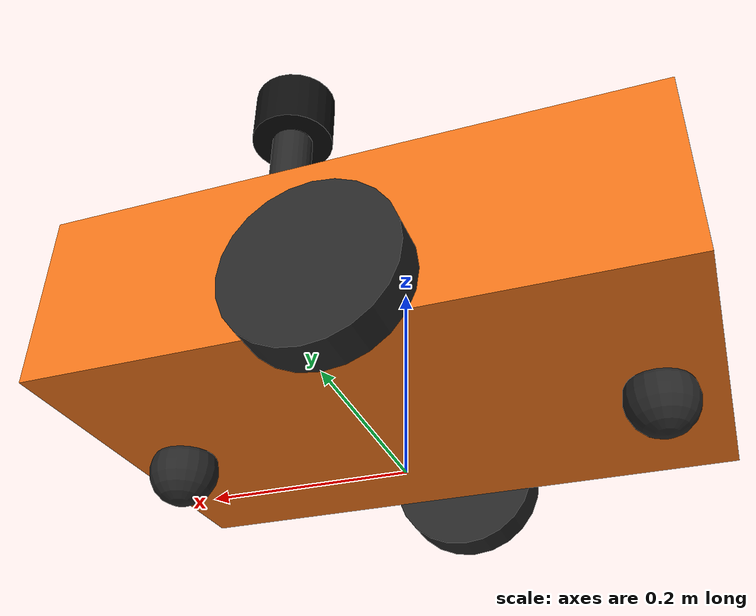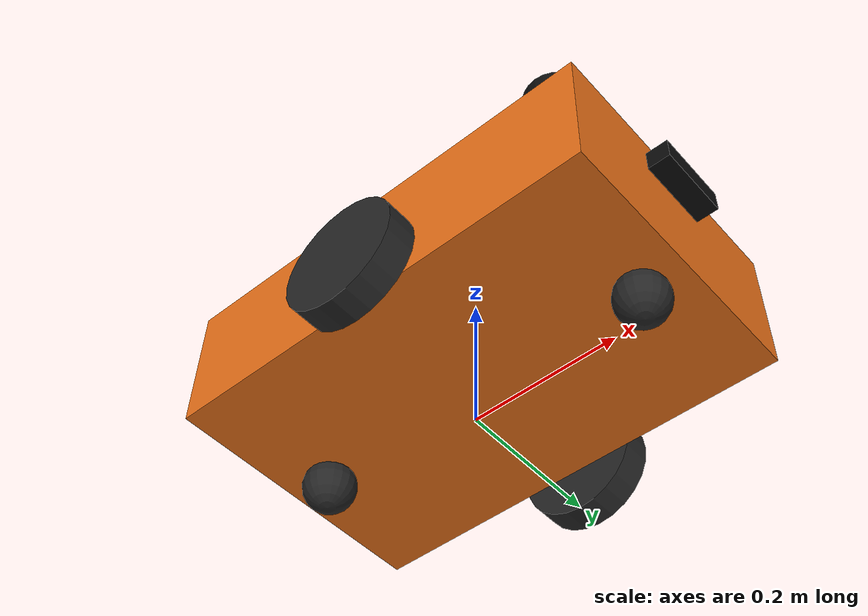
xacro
<?xml version="1.0"?>
<robot name="wsl_amr" xmlns:xacro="http://www.ros.org/wiki/xacro">

  <xacro:arg name="lidar_rate_hz" default="10"/>
  <xacro:arg name="lidar_channels" default="16"/>
  <xacro:arg name="lidar_horizontal_samples" default="900"/>
  <xacro:arg name="camera_rate_hz" default="20"/>
  <xacro:arg name="imu_rate_hz" default="100"/>
  <xacro:arg name="odom_wheel_radius_scale" default="1.0"/>
  <xacro:arg name="odom_wheel_separation_scale" default="1.0"/>
  <xacro:arg name="ground_truth" default="true"/>

  <xacro:include filename="$(find wsl_description)/urdf/inertial.xacro"/>

  <xacro:property name="wheel_radius" value="0.08"/>
  <xacro:property name="wheel_width" value="0.04"/>
  <xacro:property name="wheel_separation" value="0.44"/>
  <xacro:property name="wheel_mass" value="1.2"/>

  <xacro:property name="chassis_length" value="0.60"/>
  <xacro:property name="chassis_width" value="0.38"/>
  <xacro:property name="chassis_height" value="0.18"/>
  <xacro:property name="chassis_mass" value="28.0"/>
  <xacro:property name="chassis_clearance" value="0.05"/>
  <!-- Chassis centre relative to base_link (which sits at axle height). -->
  <xacro:property name="chassis_z" value="${chassis_clearance + chassis_height/2 - wheel_radius}"/>
  <xacro:property name="chassis_top_z" value="${chassis_z + chassis_height/2}"/>

  <xacro:property name="caster_radius" value="0.035"/>
  <xacro:property name="caster_x" value="0.24"/>
  <xacro:property name="caster_collision_radius" value="${caster_radius - 0.001}"/>

  <xacro:property name="lidar_x" value="0.15"/>
  <xacro:property name="lidar_height_above_ground" value="0.50"/>
  <xacro:property name="lidar_z" value="${lidar_height_above_ground - wheel_radius}"/>
  <xacro:property name="lidar_radius" value="0.05"/>
  <xacro:property name="lidar_length" value="0.07"/>
  <xacro:property name="lidar_mass" value="0.8"/>
  <xacro:property name="mast_radius" value="0.025"/>
  <xacro:property name="mast_length" value="${lidar_z - lidar_length/2 - chassis_top_z}"/>

  <xacro:property name="camera_x" value="${chassis_length/2 + 0.015}"/>
  <xacro:property name="camera_z" value="0.11"/>

  <material name="chassis_orange"><color rgba="0.93 0.45 0.10 1.0"/></material>
  <material name="dark_grey"><color rgba="0.15 0.15 0.15 1.0"/></material>
  <material name="sensor_black"><color rgba="0.05 0.05 0.05 1.0"/></material>

  <link name="base_footprint"/>

  <joint name="base_joint" type="fixed">
    <parent link="base_footprint"/>
    <child link="base_link"/>
    <origin xyz="0 0 ${wheel_radius}" rpy="0 0 0"/>
  </joint>

  <link name="base_link">
    <visual name="chassis">
      <origin xyz="0 0 ${chassis_z}"/>
      <geometry><box size="${chassis_length} ${chassis_width} ${chassis_height}"/></geometry>
      <material name="chassis_orange"/>
    </visual>
    <collision name="chassis">
      <origin xyz="0 0 ${chassis_z}"/>
      <geometry><box size="${chassis_length} ${chassis_width} ${chassis_height}"/></geometry>
    </collision>

    <visual name="mast">
      <origin xyz="${lidar_x} 0 ${chassis_top_z + mast_length/2}"/>
      <geometry><cylinder radius="${mast_radius}" length="${mast_length}"/></geometry>
      <material name="dark_grey"/>
    </visual>
    <collision name="mast">
      <origin xyz="${lidar_x} 0 ${chassis_top_z + mast_length/2}"/>
      <geometry><cylinder radius="${mast_radius}" length="${mast_length}"/></geometry>
    </collision>

    <xacro:macro name="caster" params="name x">
      <visual name="${name}_caster">
        <origin xyz="${x} 0 ${caster_radius - wheel_radius}"/>
        <geometry><sphere radius="${caster_radius}"/></geometry>
        <material name="dark_grey"/>
      </visual>
      <collision name="${name}_caster">
        <origin xyz="${x} 0 ${caster_radius - wheel_radius}"/>
        <geometry><sphere radius="${caster_collision_radius}"/></geometry>
      </collision>
    </xacro:macro>
    <xacro:caster name="front" x="${caster_x}"/>
    <xacro:caster name="rear" x="${-caster_x}"/>

    <!-- Mast and caster mass is folded into the chassis box. -->
    <xacro:box_inertial mass="${chassis_mass}" x="${chassis_length}" y="${chassis_width}" z="${chassis_height}">
      <origin xyz="0 0 ${chassis_z}"/>
    </xacro:box_inertial>
  </link>

  <!--
    Both wheel axes point along +y: positive joint velocity rolls the wheel
    towards +x. DiffDrive accounts for the mirrored mounting itself.
  -->
  <xacro:macro name="drive_wheel" params="side y">
    <joint name="${side}_wheel_joint" type="continuous">
      <parent link="base_link"/>
      <child link="${side}_wheel_link"/>
      <origin xyz="0 ${y} 0"/>
      <axis xyz="0 1 0"/>
      <limit effort="20" velocity="20"/>
      <dynamics damping="0.01" friction="0.0"/>
    </joint>
    <link name="${side}_wheel_link">
      <visual>
        <origin rpy="${pi/2} 0 0"/>
        <geometry><cylinder radius="${wheel_radius}" length="${wheel_width}"/></geometry>
        <material name="dark_grey"/>
      </visual>
      <collision>
        <origin rpy="${pi/2} 0 0"/>
        <geometry><cylinder radius="${wheel_radius}" length="${wheel_width}"/></geometry>
      </collision>
      <xacro:cylinder_inertial mass="${wheel_mass}" radius="${wheel_radius}" length="${wheel_width}">
        <origin rpy="${pi/2} 0 0"/>
      </xacro:cylinder_inertial>
    </link>
  </xacro:macro>
  <xacro:drive_wheel side="left" y="${wheel_separation/2}"/>
  <xacro:drive_wheel side="right" y="${-wheel_separation/2}"/>

  <joint name="lidar_joint" type="fixed">
    <parent link="base_link"/>
    <child link="lidar_link"/>
    <origin xyz="${lidar_x} 0 ${lidar_z}"/>
  </joint>
  <link name="lidar_link">
    <visual>
      <geometry><cylinder radius="${lidar_radius}" length="${lidar_length}"/></geometry>
      <material name="sensor_black"/>
    </visual>
    <collision>
      <geometry><cylinder radius="${lidar_radius}" length="${lidar_length}"/></geometry>
    </collision>
    <xacro:cylinder_inertial mass="${lidar_mass}" radius="${lidar_radius}" length="${lidar_length}">
      <origin/>
    </xacro:cylinder_inertial>
  </link>

  <joint name="camera_joint" type="fixed">
    <parent link="base_link"/>
    <child link="camera_link"/>
    <origin xyz="${camera_x} 0 ${camera_z}"/>
  </joint>
  <link name="camera_link">
    <visual>
      <geometry><box size="0.03 0.10 0.03"/></geometry>
      <material name="sensor_black"/>
    </visual>
    <xacro:box_inertial mass="0.1" x="0.03" y="0.10" z="0.03">
      <origin/>
    </xacro:box_inertial>
  </link>

  <!-- REP-103 optical convention: z forward, x right, y down. -->
  <joint name="camera_optical_joint" type="fixed">
    <parent link="camera_link"/>
    <child link="camera_optical_frame"/>
    <origin rpy="${-pi/2} 0 ${-pi/2}"/>
  </joint>
  <link name="camera_optical_frame"/>

  <joint name="imu_joint" type="fixed">
    <parent link="base_link"/>
    <child link="imu_link"/>
    <origin xyz="0 0 ${chassis_z}"/>
  </joint>
  <link name="imu_link"/>

  <xacro:include filename="$(find wsl_description)/urdf/wsl_amr.gazebo.xacro"/>

</robot>

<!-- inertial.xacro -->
<robot xmlns:xacro="http://www.ros.org/wiki/xacro">

  <xacro:macro name="box_inertial" params="mass x y z *origin">
    <inertial>
      <xacro:insert_block name="origin"/>
      <mass value="${mass}"/>
      <inertia ixx="${mass / 12.0 * (y*y + z*z)}" ixy="0" ixz="0"
               iyy="${mass / 12.0 * (x*x + z*z)}" iyz="0"
               izz="${mass / 12.0 * (x*x + y*y)}"/>
    </inertial>
  </xacro:macro>

  <!-- Cylinder axis is the local z axis; rotate with the origin block. -->
  <xacro:macro name="cylinder_inertial" params="mass radius length *origin">
    <inertial>
      <xacro:insert_block name="origin"/>
      <mass value="${mass}"/>
      <inertia ixx="${mass / 12.0 * (3*radius*radius + length*length)}" ixy="0" ixz="0"
               iyy="${mass / 12.0 * (3*radius*radius + length*length)}" iyz="0"
               izz="${mass / 2.0 * radius*radius}"/>
    </inertial>
  </xacro:macro>

</robot>
